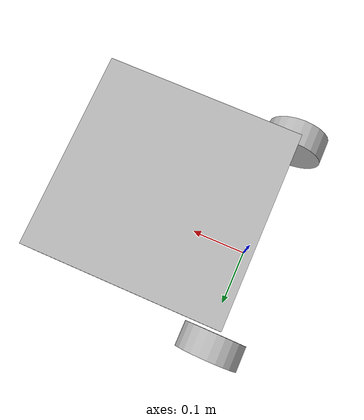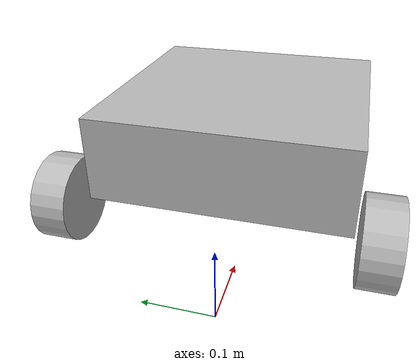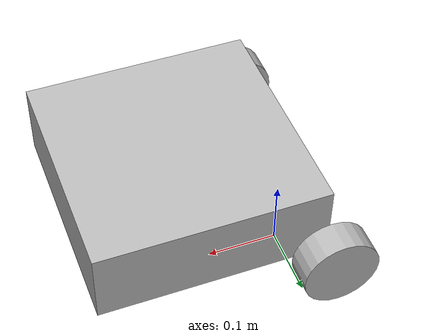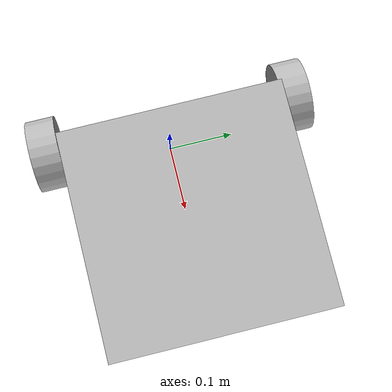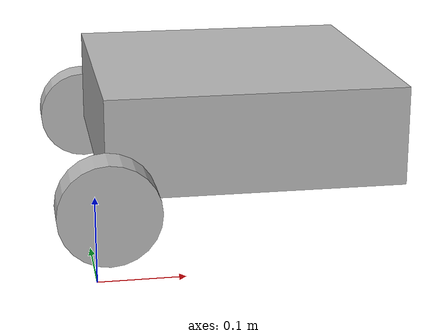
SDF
<?xml version="1.0" ?>
<sdf version="1.9">
  <model name="amr_car">
    <pose>0 0 0.1 0 0 0</pose>

    <link name="base_link">
      <pose>0.15 0 0.075 0 0 0</pose>

      <inertial>
        <mass>5.0</mass>
        <inertia>
          <ixx>0.05</ixx>
          <iyy>0.05</iyy>
          <izz>0.08</izz>
          <ixy>0.0</ixy>
          <ixz>0.0</ixz>
          <iyz>0.0</iyz>
        </inertia>
      </inertial>

      <collision name="collision">
        <pose>0 0 0.025 0 0 0</pose>
        <geometry>
          <box>
            <size>0.3 0.3 0.10</size>
          </box>
        </geometry>
      </collision>

      <visual name="visual">
        <pose>0 0 0.025 0 0 0</pose>
        <geometry>
          <box>
            <size>0.3 0.3 0.10</size>
          </box>
        </geometry>
      </visual>

      <sensor name="imu_sensor" type="imu">
        <pose>0 0 0 0 0 0</pose>
        <always_on>true</always_on>
        <update_rate>50</update_rate>
        <topic>/imu</topic>
        <imu>
          <angular_velocity>
            <x>
              <noise type="gaussian">
                <mean>0.0</mean>
                <stddev>0.0002</stddev>
              </noise>
            </x>
            <y>
              <noise type="gaussian">
                <mean>0.0</mean>
                <stddev>0.0002</stddev>
              </noise>
            </y>
            <z>
              <noise type="gaussian">
                <mean>0.0</mean>
                <stddev>0.0002</stddev>
              </noise>
            </z>
          </angular_velocity>
          <linear_acceleration>
            <x>
              <noise type="gaussian">
                <mean>0.0</mean>
                <stddev>0.017</stddev>
              </noise>
            </x>
            <y>
              <noise type="gaussian">
                <mean>0.0</mean>
                <stddev>0.017</stddev>
              </noise>
            </y>
            <z>
              <noise type="gaussian">
                <mean>0.0</mean>
                <stddev>0.017</stddev>
              </noise>
            </z>
          </linear_acceleration>
        </imu>
      </sensor>

      <sensor name="camera_sensor" type="camera">
        <pose>0.25 0 0.25 0 0 0</pose>
        <always_on>true</always_on>
        <update_rate>30</update_rate>
        <camera>
          <horizontal_fov>1.047</horizontal_fov>
          <image>
            <width>640</width>
            <height>480</height>
            <format>R8G8B8</format>
          </image>
          <clip>
            <near>0.1</near>
            <far>100</far>
          </clip>
        </camera>
        <topic>/camera/image_raw</topic>
        <gz_frame_id>camera_link</gz_frame_id>
      </sensor>

      <sensor name="ultrasonic_sensor" type="gpu_lidar">
        <pose>0.3 0 0.05 0 0 0</pose>
        <always_on>true</always_on>
        <update_rate>10</update_rate>
        <topic>/ultrasonic</topic>
        <gz_frame_id>ultrasonic_link</gz_frame_id>
        <visualize>true</visualize>
        <lidar>
          <scan>
            <horizontal>
              <samples>5</samples>
              <resolution>1</resolution>
              <min_angle>-0.1</min_angle>
              <max_angle>0.1</max_angle>
            </horizontal>
          </scan>
          <range>
            <min>0.02</min>
            <max>4.0</max>
            <resolution>0.01</resolution>
          </range>
        </lidar>
      </sensor>

      <sensor name="ir_sensor" type="gpu_lidar">
        <pose>0.3 0.1 0.05 0 0 0</pose>
        <always_on>true</always_on>
        <update_rate>20</update_rate>
        <topic>/infrared</topic>
        <gz_frame_id>ir_link</gz_frame_id>
        <visualize>true</visualize>
        <lidar>
          <scan>
            <horizontal>
              <samples>1</samples>
              <resolution>1</resolution>
              <min_angle>0</min_angle>
              <max_angle>0</max_angle>
            </horizontal>
          </scan>
          <range>
            <min>0.01</min>
            <max>0.8</max>
            <resolution>0.01</resolution>
          </range>
        </lidar>
      </sensor>

    </link>

<link name="lidar_link">
  <pose>0.33 0 0.32 0 0 0</pose>

  <inertial>
    <mass>0.01</mass>
    <inertia>
      <ixx>0.00001</ixx>
      <iyy>0.00001</iyy>
      <izz>0.00001</izz>
      <ixy>0.0</ixy>
      <ixz>0.0</ixz>
      <iyz>0.0</iyz>
    </inertia>
  </inertial>

  <sensor name="lidar" type="gpu_lidar">
    <pose>0 0 0 0 0 0</pose>
    <always_on>true</always_on>
    <update_rate>10</update_rate>
    <topic>/scan</topic>
    <gz_frame_id>lidar_link</gz_frame_id>
    <visualize>true</visualize>

    <lidar>
      <scan>
        <horizontal>
          <samples>360</samples>
          <resolution>1</resolution>
          <min_angle>-3.14159</min_angle>
          <max_angle>3.14159</max_angle>
        </horizontal>
      </scan>
      <range>
        <min>0.10</min>
        <max>10.0</max>
        <resolution>0.01</resolution>
      </range>
    </lidar>
  </sensor>
</link>
    <joint name="lidar_joint" type="fixed">
      <parent>base_link</parent>
      <child>lidar_link</child>
    </joint>

    <link name="caster_wheel">
      <pose>0.25 0 0.025 0 0 0</pose>
      <inertial>
        <mass>0.1</mass>
        <inertia>
          <ixx>0.0001</ixx>
          <iyy>0.0001</iyy>
          <izz>0.0001</izz>
          <ixy>0</ixy>
          <ixz>0</ixz>
          <iyz>0</iyz>
        </inertia>
      </inertial>
      <collision name="collision">
        <geometry>
          <sphere>
            <radius>0.025</radius>
          </sphere>
        </geometry>
        <surface>
          <friction>
            <ode>
              <mu>0.0</mu>
              <mu2>0.0</mu2>
              <slip1>1.0</slip1>
              <slip2>1.0</slip2>
            </ode>
          </friction>
        </surface>
      </collision>
      <visual name="visual">
        <geometry>
          <sphere>
            <radius>0.025</radius>
          </sphere>
        </geometry>
        <material>
          <ambient>0.2 0.2 0.2 1</ambient>
          <diffuse>0.2 0.2 0.2 1</diffuse>
        </material>
      </visual>
    </link>

    <joint name="caster_wheel_joint" type="fixed">
      <parent>base_link</parent>
      <child>caster_wheel</child>
    </joint>

    <link name="left_wheel">
      <pose>0 0.175 0.05 -1.5708 0 0</pose>
      <inertial>
        <mass>0.5</mass>
        <inertia>
          <ixx>0.001</ixx>
          <iyy>0.001</iyy>
          <izz>0.001</izz>
          <ixy>0.0</ixy>
          <ixz>0.0</ixz>
          <iyz>0.0</iyz>
        </inertia>
      </inertial>
      <collision name="collision">
        <geometry>
          <cylinder>
            <radius>0.05</radius>
            <length>0.04</length>
          </cylinder>
        </geometry>
      </collision>
      <visual name="visual">
        <geometry>
          <cylinder>
            <radius>0.05</radius>
            <length>0.04</length>
          </cylinder>
        </geometry>
      </visual>
    </link>

    <link name="right_wheel">
      <pose>0 -0.175 0.05 1.5708 0 0</pose>
      <inertial>
        <mass>0.5</mass>
        <inertia>
          <ixx>0.001</ixx>
          <iyy>0.001</iyy>
          <izz>0.001</izz>
          <ixy>0.0</ixy>
          <ixz>0.0</ixz>
          <iyz>0.0</iyz>
        </inertia>
      </inertial>
      <collision name="collision">
        <geometry>
          <cylinder>
            <radius>0.05</radius>
            <length>0.04</length>
          </cylinder>
        </geometry>
      </collision>
      <visual name="visual">
        <geometry>
          <cylinder>
            <radius>0.05</radius>
            <length>0.04</length>
          </cylinder>
        </geometry>
      </visual>
    </link>

    <joint name="left_wheel_joint" type="revolute">
      <parent>base_link</parent>
      <child>left_wheel</child>
      <axis>
        <xyz>0 0 -1</xyz>
      </axis>
    </joint>

    <joint name="right_wheel_joint" type="revolute">
      <parent>base_link</parent>
      <child>right_wheel</child>
      <axis>
        <xyz>0 0 1</xyz>
      </axis>
    </joint>

    <plugin
      filename="gz-sim-diff-drive-system"
      name="gz::sim::systems::DiffDrive">
      <left_joint>left_wheel_joint</left_joint>
      <right_joint>right_wheel_joint</right_joint>
      <wheel_separation>0.35</wheel_separation>
      <wheel_radius>0.05</wheel_radius>
      <odom_publish_frequency>30</odom_publish_frequency>
      <topic>/cmd_vel</topic>
    </plugin>
  </model>
</sdf>
